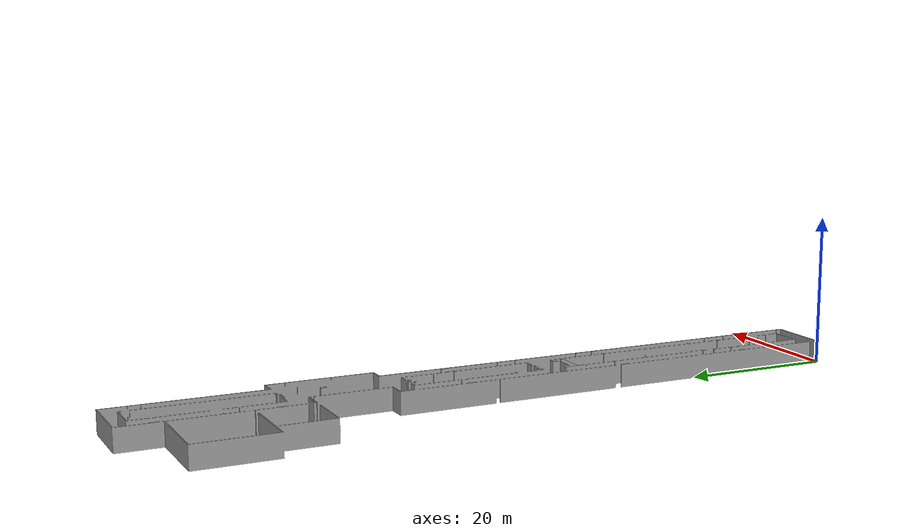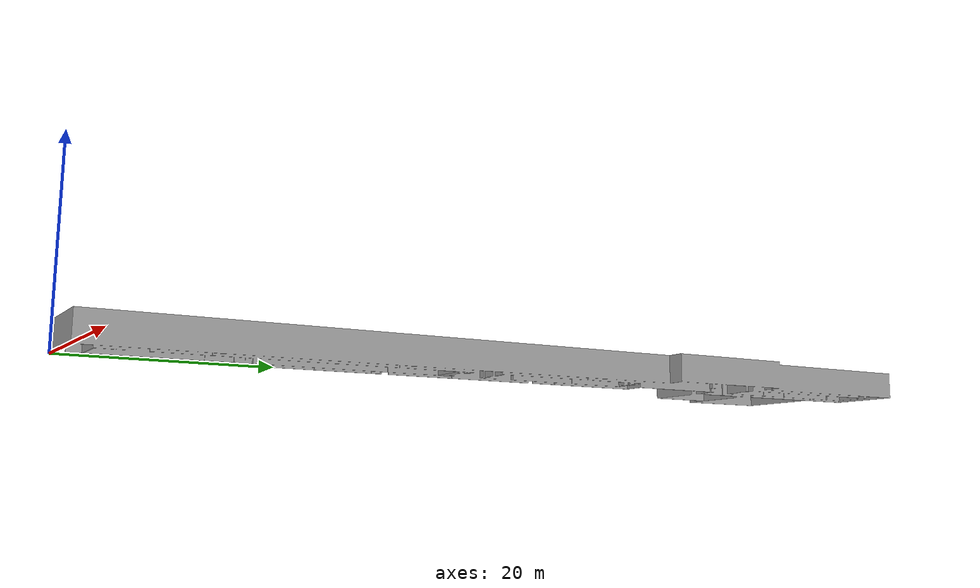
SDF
<sdf version="1.4">
  <model name="mfja_3rd_floor">
    <static>1</static>
    <link name="link">

      <collision name="colision1">
        <pose>0 0 0 0 0 0</pose>
        <geometry>
          <mesh>
            <uri>model://mfja_3rd_floor/meshes/mfja_3rd_floor_v3.stl</uri>
	    <scale> 1 1 1 </scale>
          </mesh>
        </geometry>
        <surface>
          <bounce />
          <friction>
            <ode />
          </friction>
          <contact>
            <ode />
          </contact>
        </surface>
      </collision>

      <visual name="visual1">
        <pose>0 0 0 0 0 0</pose>
        <geometry>
          <mesh>
            <uri>model://mfja_3rd_floor/meshes/mfja_3rd_floor_v3.stl</uri>
	    <scale> 1 1 1 </scale>
          </mesh>
        </geometry>
        <material>
          <script>
            <uri>file://media/materials/scripts/gazebo.material</uri>
            <name>Gazebo/Grey</name>
          </script>
        </material>
      </visual>

      <velocity_decay>
        <linear>0.000000</linear>
        <angular>0.000000</angular>
      </velocity_decay>
      <self_collide>0</self_collide>
      <kinematic>0</kinematic>
      <gravity>1</gravity>
    </link>
  </model>
</sdf>
